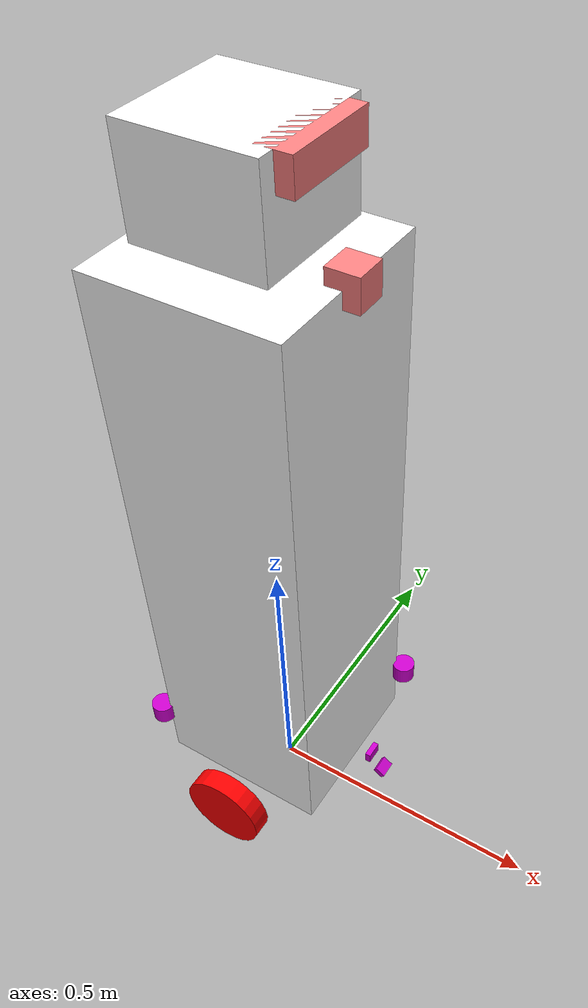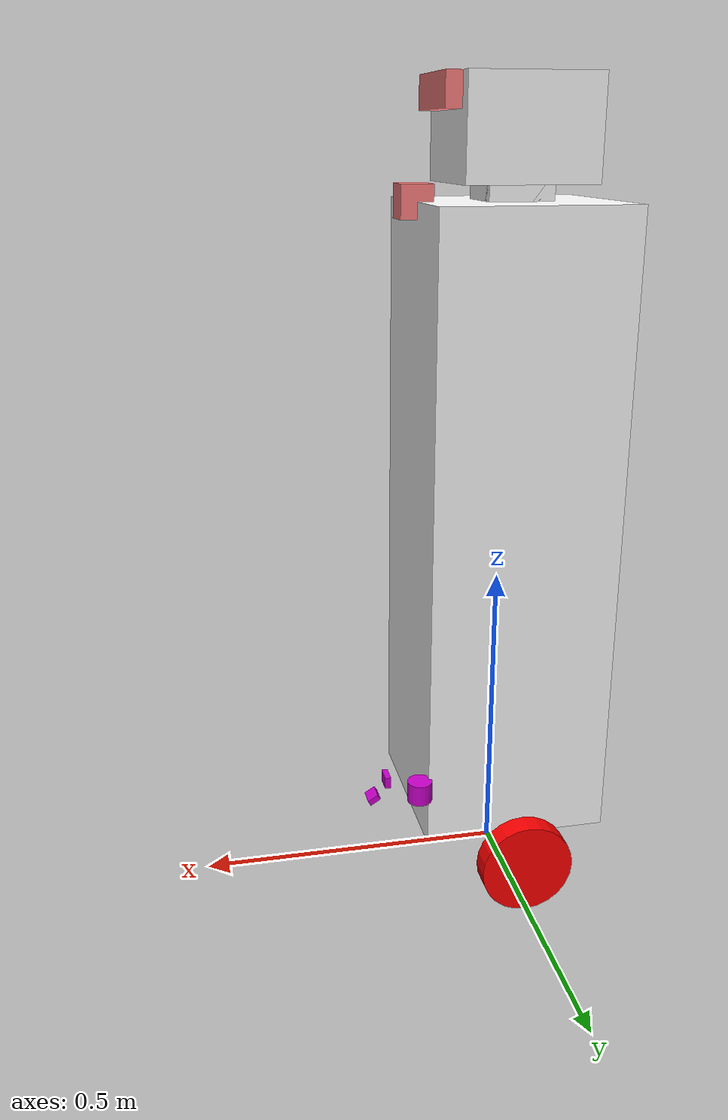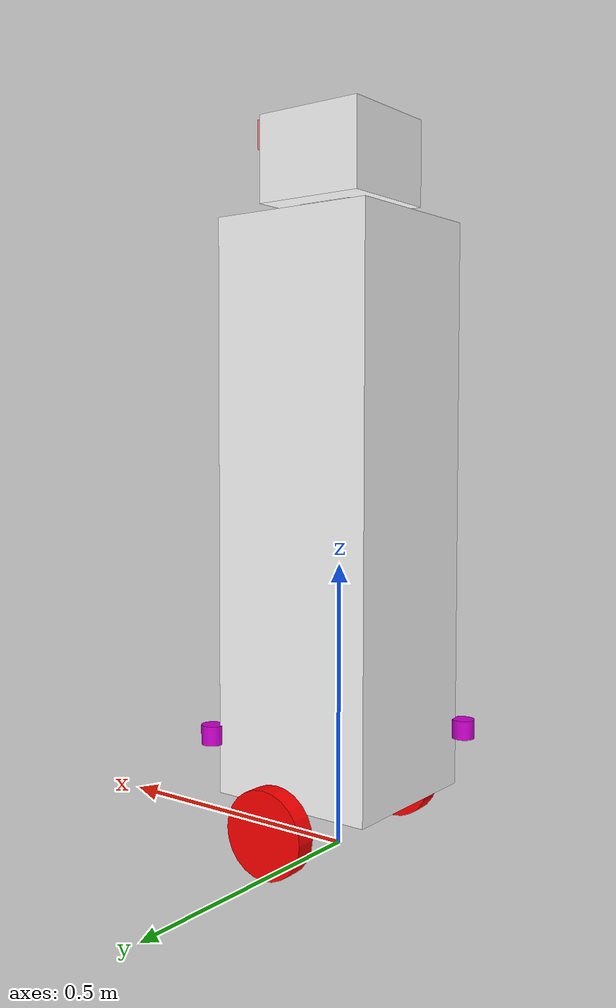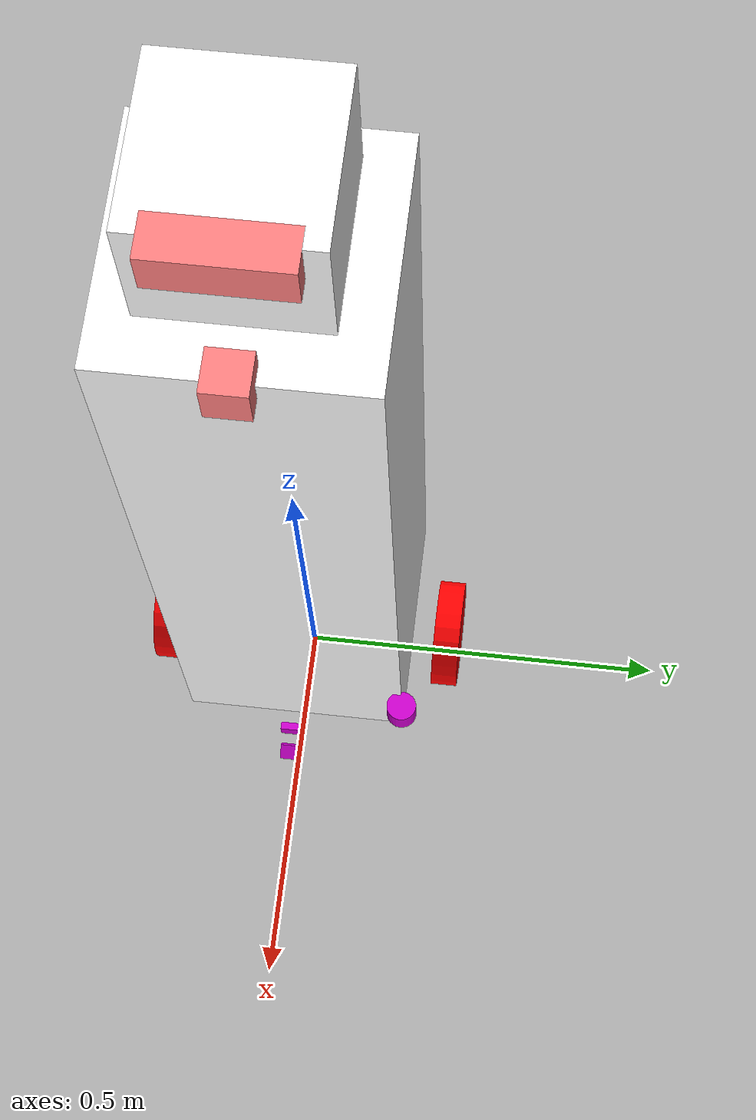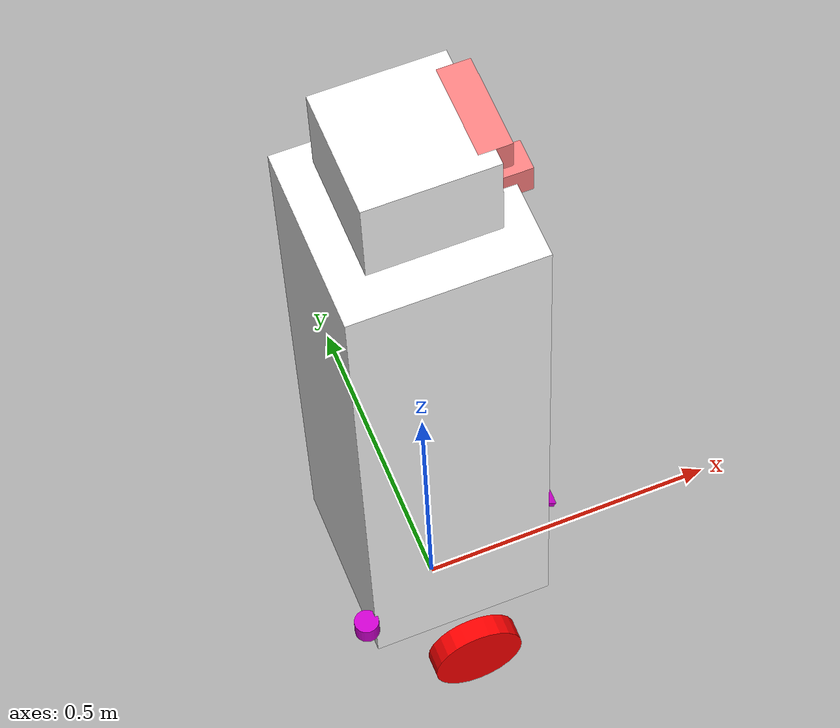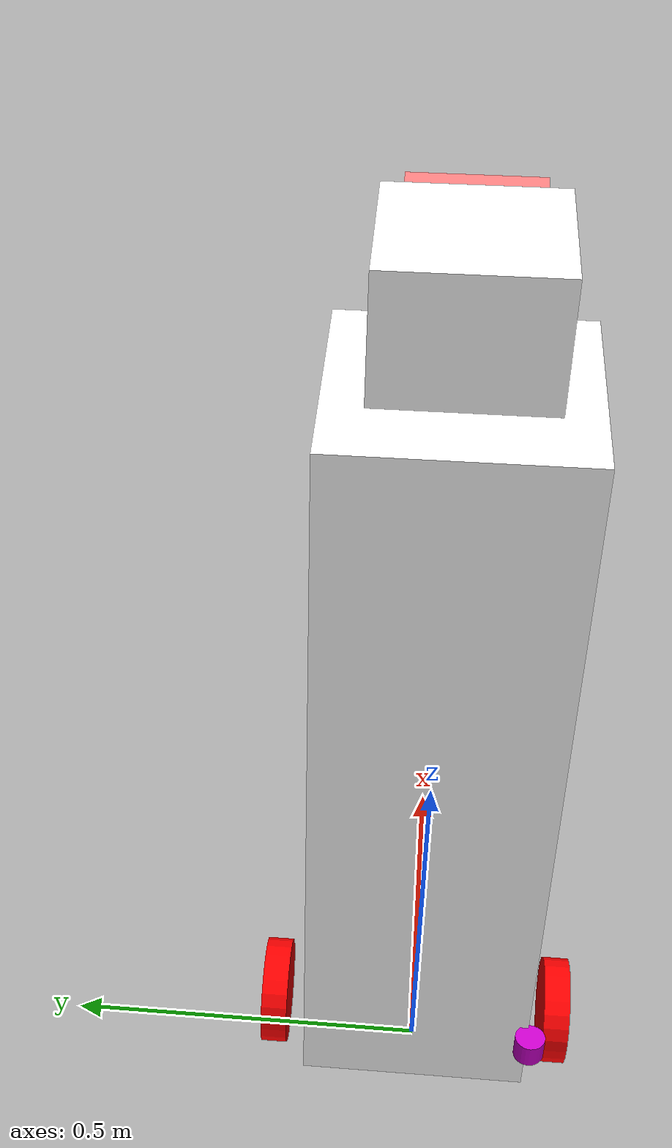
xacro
<?xml version="1.0" ?>
<robot name="ccn_amr" xmlns:xacro="http://ros.org/wiki/xacro">
  <!-- Arguments -->
  <xacro:arg name="namespace" default="" />
  <xacro:arg name="robot_name" default="indy" />

  <!-- define materials -->
  <material name="yellow">
    <color rgba="0.8 0.8 0.0 1.0"/>
  </material>
  <material name="red">
    <color rgba="1.0 0.0 0.0 1.0"/>
  </material>
  <material name="green">
    <color rgba="0.0 1.0 0.0 1.0"/>
  </material>
  <material name="gray">
    <color rgba="0.8 0.8 0.8 1.0"/>
  </material>
  <material name="purple">
    <color rgba="0.8 0.0 0.8 1.0"/>
  </material>

  <!-- define macros-->
  <xacro:macro name="wheel_macro" params="parent prefix xyz">
    <joint name="${prefix}_joint" type="continuous">
      <origin xyz="${xyz}" rpy="${radians(-90)} 0 0"/>
      <parent link="${parent}"/>
      <child  link="${prefix}_link"/>
      <axis xyz="0 0 1" />
      <limit velocity="300.0" effort="5.0"/> <!-- rad/s, N*m -->
      <dynamics damping="0.1"/>
    </joint>
    <link name="${prefix}_link">
      <visual>
        <geometry>
          <cylinder radius="0.075" length="0.036" />
        </geometry>
        <material name="red"/>
      </visual>
      <collision>
        <geometry>
          <cylinder radius="0.075" length="0.036" />
        </geometry>
      </collision>
      <inertial>
        <origin xyz="0 0 0" rpy="0 0 0"/>
        <mass value="0.5"/>
        <inertia ixx="0.0005" ixy="0.0" ixz="0.0" iyy="0.0005" iyz="0.0" izz="0.0005"/>
      </inertial>
    </link>
    <gazebo reference="${prefix}_link">
      <material>Gazebo/Red</material>
      <mu1 value="1.0" />
      <mu2 value="1.0" />
    </gazebo>
    <transmission name="${prefix}_trans">
      <type>transmission_interface/SimpleTransmission</type>
      <joint name="${prefix}_joint">
        <hardwareInterface>hardware_interface/VelocityJointInterface</hardwareInterface>
      </joint>
      <actuator name="${prefix}_motor">
        <hardwareInterface>hardware_interface/VelocityJointInterface</hardwareInterface>
        <mechanismReduction>1</mechanismReduction>
      </actuator>
    </transmission>
  </xacro:macro>

  <!-- robot -->
  <link name="$(arg robot_name)_base_footprint" />

  <joint name="$(arg robot_name)_base_joint" type="fixed">
    <parent link="$(arg robot_name)_base_footprint"/>
    <child link="$(arg robot_name)_base_link"/>
    <origin xyz="0.000 0.000 0.075"/>
  </joint>
  <link name="$(arg robot_name)_base_link">
    <visual>
      <geometry>
        <box size="0.050 0.050 0.050"/>
      </geometry>
      <material name="yellow"/>
    </visual>
  </link>
  <gazebo reference="$(arg robot_name)_base_link">
    <material>Gazebo/Yellow</material>
  </gazebo>

  <xacro:wheel_macro prefix="$(arg robot_name)_left_wheel"  parent="$(arg robot_name)_base_link" xyz="-0.000 0.200 -0.000"/>
  <xacro:wheel_macro prefix="$(arg robot_name)_right_wheel" parent="$(arg robot_name)_base_link" xyz="-0.000 -0.200 -0.000"/>

  <!-- sensors -->
  <joint name="$(arg robot_name)_laser_f_joint" type="fixed">
    <parent link="$(arg robot_name)_base_link"/>
    <child link="$(arg robot_name)_laser_f_link"/>
    <origin xyz="0.165 0.152 0.1273" rpy="0.0 0.0 0.785398" />
  </joint>
  <link name="$(arg robot_name)_laser_f_link">
    <visual>
      <geometry>
        <cylinder radius="0.020" length="0.034" />
      </geometry>
      <material name="purple"/>
    </visual>
  </link>
  <gazebo reference="$(arg robot_name)_laser_f_link">
    <material>Gazebo/Purple</material>
  </gazebo>
  <gazebo reference="$(arg robot_name)_laser_f_link">
    <turnGravityOff>false</turnGravityOff>
    <sensor type="ray" name="$(arg robot_name)_lidar_sensor">
      <pose>0 0 0 0 0 0</pose>
      <visualize>true</visualize>
      <update_rate>40</update_rate>
      <ray>
        <scan>
          <horizontal>
            <samples>1080</samples>
            <resolution>1</resolution>
            <min_angle>${radians(-135)}</min_angle>
            <max_angle>${radians(135)}</max_angle>
          </horizontal>
        </scan>
        <range>
          <min>0.06</min>
          <max>20.0</max>
          <resolution>0.04</resolution>
        </range>
      </ray>
      <plugin name="$(arg robot_name)_gazebo_lidar_controller"
        filename="libgazebo_ros_laser.so">
        <topicName>$(arg namespace)/scan_l</topicName>
        <frameName>$(arg namespace)/$(arg robot_name)_laser_f_link</frameName>
      </plugin>
    </sensor>
  </gazebo>

  <joint name="$(arg robot_name)_laser_b_joint" type="fixed">
    <parent link="$(arg robot_name)_base_link"/>
    <child link="$(arg robot_name)_laser_b_link"/>
    <origin xyz="-0.165 -0.152 0.1273" rpy="0.0 0.0 -2.356194" />
  </joint>
  <link name="$(arg robot_name)_laser_b_link">
    <visual>
      <geometry>
        <cylinder radius="0.020" length="0.034" />
      </geometry>
      <material name="purple"/>
    </visual>
  </link>
  <gazebo reference="$(arg robot_name)_laser_b_link">
    <material>Gazebo/Purple</material>
  </gazebo>
  <gazebo reference="$(arg robot_name)_laser_b_link">
    <turnGravityOff>false</turnGravityOff>
    <sensor type="ray" name="$(arg robot_name)_lidar_sensor">
      <pose>0 0 0 0 0 0</pose>
      <visualize>true</visualize>
      <update_rate>40</update_rate>
      <ray>
        <scan>
          <horizontal>
            <samples>1080</samples>
            <resolution>1</resolution>
            <min_angle>${radians(-135)}</min_angle>
            <max_angle>${radians(135)}</max_angle>
          </horizontal>
        </scan>
        <range>
          <min>0.06</min>
          <max>20.0</max>
          <resolution>0.04</resolution>
        </range>
      </ray>
      <plugin name="$(arg robot_name)_gazebo_lidar_controller"
        filename="libgazebo_ros_laser.so">
        <topicName>$(arg namespace)/scan_b</topicName>
        <frameName>$(arg namespace)/$(arg robot_name)_laser_b_link</frameName>
      </plugin>
    </sensor>
  </gazebo>

  <joint name="$(arg robot_name)_camera_bu_joint" type="fixed">
    <parent link="$(arg robot_name)_base_link"/>
    <child link="$(arg robot_name)_camera_bu_link"/>
    <origin xyz="0.21092 0.0 0.02949" rpy="0.0 -1.012291 0.0" />
  </joint>
  <link name="$(arg robot_name)_camera_bu_link">
    <visual>
      <geometry>
        <box size="0.010 0.030 0.020"/>
      </geometry>
      <material name="purple"/>
    </visual>
  </link>
  <gazebo reference="$(arg robot_name)_camera_bu_link">
    <material>Gazebo/Purple</material>
  </gazebo>

  <joint name="$(arg robot_name)_camera_td_joint" type="fixed">
    <parent link="$(arg robot_name)_base_link"/>
    <child link="$(arg robot_name)_camera_td_link"/>
    <origin xyz="0.18675 0.0 0.06079" rpy="0.0 0.0 0.0" />
  </joint>
  <link name="$(arg robot_name)_camera_td_link">
    <visual>
      <geometry>
        <box size="0.010 0.030 0.020"/>
      </geometry>
      <material name="purple"/>
    </visual>
  </link>
  <gazebo reference="$(arg robot_name)_camera_td_link">
    <material>Gazebo/Purple</material>
  </gazebo>

  <joint name="$(arg robot_name)_body_joint" type="fixed">
    <origin xyz="0 0 0.525" rpy="0 0 0" />
    <parent link="$(arg robot_name)_base_link" />
    <child link="$(arg robot_name)_body_link" />
  </joint>
  <link name="$(arg robot_name)_body_link">
    <visual>
      <geometry>
        <box size="0.3 0.3 1.0" />
      </geometry>
      <material name="white">
        <color rgba="1.0 1.0 1.0 1.0" />
      </material>
    </visual>
  </link>

  <joint name="$(arg robot_name)_body_pitch_joint" type="revolute">
    <axis xyz="0 1 0" />
    <limit effort="1000.0" lower="-0.5" upper="1.0" velocity="1.0" />
    <origin xyz="0 0 0.5" rpy="0 0 0" />  <!-- this rotation should be set in neck joint -->
    <parent link="$(arg robot_name)_body_link" />
    <child link="$(arg robot_name)_neck_link" />
  </joint>
  <link name="$(arg robot_name)_neck_link">
    <visual>
      <geometry>
        <box size="0.1 0.1 0.1" />
      </geometry>
      <material name="white">
        <color rgba="1.0 1.0 1.0 1.0" />
      </material>
    </visual>
  </link>

  <joint name="$(arg robot_name)_neck_yaw_joint" type="revolute">
    <axis xyz="0 0 1" />
    <limit effort="1000.0" lower="-1.57" upper="1.57" velocity="1.0" />
    <origin xyz="0 0 0.05" rpy="0 0 0" />  <!-- this rotation should be set in neck joint -->
    <parent link="$(arg robot_name)_neck_link" />
    <child link="$(arg robot_name)_upper_neck_link" />
  </joint>
  <link name="$(arg robot_name)_upper_neck_link">
    <visual>
      <geometry>
        <box size="0.1 0.1 0.1" />
      </geometry>
      <material name="white">
        <color rgba="1.0 1.0 1.0 1.0" />
      </material>
    </visual>
  </link>

  <joint name="$(arg robot_name)_neck_pitch_joint" type="revolute">
    <axis xyz="0 1 0" />
    <limit effort="1000.0" lower="-1.0" upper="1.0" velocity="1.0" />
    <origin xyz="0 0 0.05" rpy="0 0 0" />  <!-- this rotation should be set in neck joint -->
    <parent link="$(arg robot_name)_upper_neck_link" />
    <child link="$(arg robot_name)_head_link" />
  </joint>
  <link name="$(arg robot_name)_head_link">
    <visual>
      <geometry>
        <box size="0.2 0.2 0.15" />
      </geometry>
      <material name="white">
        <color rgba="1.0 1.0 1.0 1.0" />
      </material>
    </visual>
  </link>

  <joint name="$(arg robot_name)_camera_joint" type="fixed">
    <origin xyz="0.1 0 0.05" rpy="0 0 0" />
    <parent link="$(arg robot_name)_head_link" />
    <child link="$(arg robot_name)_camera_link" />
  </joint>
  <link name="$(arg robot_name)_camera_link">
    <visual>
      <geometry>
        <box size="0.05 0.15 0.05" />
      </geometry>
      <material name="red">
        <color rgba="1.0 0.5 0.5 1.0" />
      </material>
    </visual>
  </link>

  <joint name="$(arg robot_name)_lidar_joint" type="fixed">
    <origin xyz="0.15 0 0" rpy="0 0 0" />
    <parent link="$(arg robot_name)_neck_link" />
    <child link="$(arg robot_name)_lidar_link" />
  </joint>
  <link name="$(arg robot_name)_lidar_link">
    <visual>
      <geometry>
        <box size="0.05 0.05 0.05" />
      </geometry>
      <material name="red">
        <color rgba="1.0 0.5 0.5 1.0" />
      </material>
    </visual>
  </link>

  <gazebo>
    <plugin name="gazebo_ros_control" filename="libgazebo_ros_control.so">
      <robotNamespace>$(arg namespace)</robotNamespace>
      <robotSimType>gazebo_ros_control/DefaultRobotHWSim</robotSimType>
      <legacyModeNS>true</legacyModeNS>
    </plugin>
  </gazebo>
</robot>
